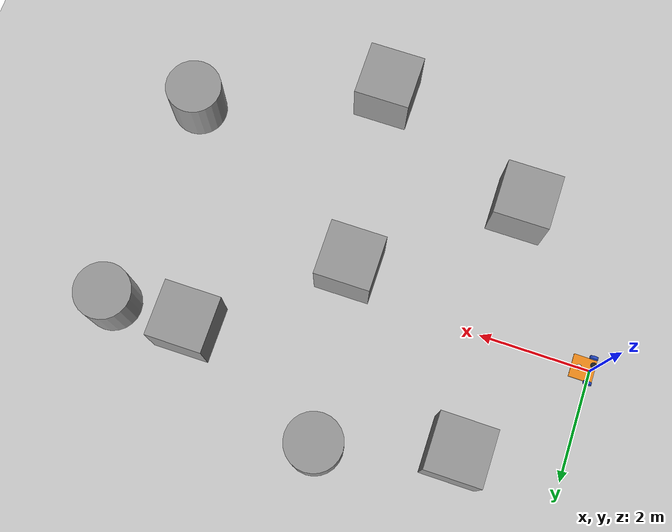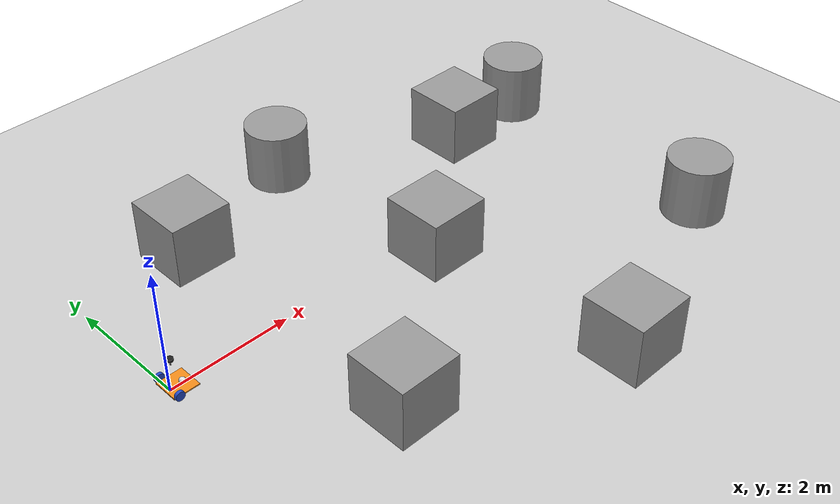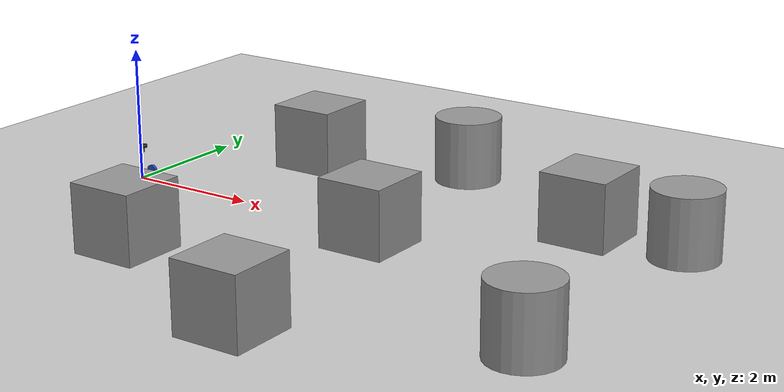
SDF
<sdf version="1.7">
 <world name="default">
  <light name="sun" type="directional">
   <pose>0 0 10 0 -0 0</pose>
   <diffuse>0.8 0.8 0.8 1</diffuse>
   <specular>0.2 0.2 0.2 1</specular>
   <attenuation>
    <range>1000</range>
    <constant>0.9</constant>
    <linear>0.01</linear>
    <quadratic>0.001</quadratic>
   </attenuation>
   <direction>-0.5 0.1 -0.9</direction>
   <spot><inner_angle>0</inner_angle><outer_angle>0</outer_angle><falloff>0</falloff></spot>
  </light>
  <model name="ground_plane">
   <static>1</static>
   <link name="link">
    <collision name="collision">
     <geometry><plane><normal>0 0 1</normal><size>100 100</size></plane></geometry>
     <surface>
      <contact><collide_bitmask>65535</collide_bitmask></contact>
      <friction><ode><mu>100</mu><mu2>50</mu2></ode></friction>
     </surface>
    </collision>
    <visual name="visual">
     <cast_shadows>0</cast_shadows>
     <geometry><plane><normal>0 0 1</normal><size>100 100</size></plane></geometry>
     <material>
      <script><uri>file://media/materials/scripts/gazebo.material</uri><name>Gazebo/Grey</name></script>
     </material>
    </visual>
   </link>
  </model>
  <gravity>0 0 -9.8</gravity>
  <magnetic_field>6e-06 2.3e-05 -4.2e-05</magnetic_field>
  <atmosphere type="adiabatic"/>
  <physics type="ode">
   <max_step_size>0.001</max_step_size>
   <real_time_factor>1</real_time_factor>
   <real_time_update_rate>1000</real_time_update_rate>
  </physics>
  <scene><ambient>0.4 0.4 0.4 1</ambient><background>0.7 0.7 0.7 1</background><shadows>1</shadows></scene>
  <audio><device>default</device></audio>
  <spherical_coordinates>
   <surface_model>EARTH_WGS84</surface_model>
   <latitude_deg>0</latitude_deg>
   <longitude_deg>0</longitude_deg>
   <elevation>0</elevation>
   <heading_deg>0</heading_deg>
  </spherical_coordinates>
  <model name="my_bot">
   <link name="base_link">
    <inertial>
     <pose>0.1335 0 0.032143 0 -0 0</pose>
     <mass>0.7</mass>
     <inertia>
      <ixx>0.0277578</ixx>
      <ixy>0</ixy>
      <ixz>0.00315125</ixz>
      <iyy>0.0287118</iyy>
      <iyz>0</iyz>
      <izz>0.015531</izz>
     </inertia>
    </inertial>
    <collision name="base_link_fixed_joint_lump__chassis_collision">
     <pose>0.1325 0 -0.04 0 -0 0</pose>
     <geometry><box><size>0.415 0.415 0.02</size></box></geometry>
    </collision>
    <collision name="base_link_fixed_joint_lump__caster_wheel_collision_1">
     <pose>0.205 0 -0.025 0 -0 0</pose>
     <geometry><sphere><radius>0.05</radius></sphere></geometry>
     <surface><friction><ode><mu>0.001</mu><mu2>0.001</mu2></ode></friction></surface>
    </collision>
    <collision name="base_link_fixed_joint_lump__laser_frame_collision_2">
     <pose>0.067 0 0.45 0 -0 0</pose>
     <geometry><cylinder><length>0.04</length><radius>0.05</radius></cylinder></geometry>
    </collision>
    <visual name="base_link_fixed_joint_lump__chassis_visual">
     <pose>0.1325 0 -0.04 0 -0 0</pose>
     <geometry><box><size>0.415 0.415 0.02</size></box></geometry>
     <material>
      <script><name>Gazebo/Orange</name><uri>file://media/materials/scripts/gazebo.material</uri></script>
     </material>
    </visual>
    <visual name="base_link_fixed_joint_lump__caster_wheel_visual_1">
     <pose>0.205 0 -0.025 0 -0 0</pose>
     <geometry><sphere><radius>0.05</radius></sphere></geometry>
     <material>
      <script><name>Gazebo/White</name><uri>file://media/materials/scripts/gazebo.material</uri></script>
     </material>
    </visual>
    <visual name="base_link_fixed_joint_lump__laser_frame_visual_2">
     <pose>0.067 0 0.45 0 -0 0</pose>
     <geometry><cylinder><length>0.04</length><radius>0.05</radius></cylinder></geometry>
     <material>
      <script><name>Gazebo/Black</name><uri>file://media/materials/scripts/gazebo.material</uri></script>
     </material>
    </visual>
    <visual name="base_link_fixed_joint_lump__laser_frame_visual_3">
     <pose>0.067 0 0.4 0 -0 0</pose>
     <geometry><cylinder><length>0.1</length><radius>0.01</radius></cylinder></geometry>
     <material>
      <script><name>Gazebo/Black</name><uri>file://media/materials/scripts/gazebo.material</uri></script>
     </material>
    </visual>
    <sensor name="laser" type="ray">
     <visualize>0</visualize>
     <update_rate>10</update_rate>
     <ray>
      <scan>
       <horizontal>
        <samples>360</samples>
        <min_angle>-3.14</min_angle>
        <max_angle>3.14</max_angle>
        <resolution>1</resolution>
       </horizontal>
       <vertical><samples>1</samples><min_angle>0</min_angle><max_angle>0</max_angle></vertical>
      </scan>
      <range><min>0.3</min><max>12</max></range>
     </ray>
     <plugin name="laser_controller" filename="libgazebo_ros_ray_sensor.so">
      <ros><argument>~/out:=scan</argument></ros>
      <output_type>sensor_msgs/LaserScan</output_type>
      <frame_name>laser_frame</frame_name>
     </plugin>
     <pose>0.067 0 0.45 0 -0 0</pose>
    </sensor>
   </link>
   <joint name="left_wheel_joint" type="revolute">
    <pose relative_to="base_link">0 0.23 0 -1.5708 0 0</pose>
    <parent>base_link</parent>
    <child>left_wheel</child>
    <axis>
     <xyz>0 0 1</xyz>
     <limit><lower>-1e+16</lower><upper>1e+16</upper></limit>
     <dynamics><spring_reference>0</spring_reference><spring_stiffness>0</spring_stiffness></dynamics>
    </axis>
   </joint>
   <link name="left_wheel">
    <pose relative_to="left_wheel_joint">0 0 0 0 -0 0</pose>
    <inertial>
     <mass>0.05</mass>
     <inertia>
      <ixx>8.07292e-05</ixx>
      <ixy>0</ixy>
      <ixz>0</ixz>
      <iyy>8.07292e-05</iyy>
      <iyz>0</iyz>
      <izz>0.000140625</izz>
     </inertia>
    </inertial>
    <collision name="left_wheel_collision">
     <geometry><sphere><radius>0.075</radius></sphere></geometry>
    </collision>
    <visual name="left_wheel_visual">
     <geometry><cylinder><length>0.05</length><radius>0.075</radius></cylinder></geometry>
     <material>
      <script><name>Gazebo/Blue</name><uri>file://media/materials/scripts/gazebo.material</uri></script>
     </material>
    </visual>
   </link>
   <joint name="right_wheel_joint" type="revolute">
    <pose relative_to="base_link">0 -0.23 0 1.5708 -0 0</pose>
    <parent>base_link</parent>
    <child>right_wheel</child>
    <axis>
     <xyz>0 0 -1</xyz>
     <limit><lower>-1e+16</lower><upper>1e+16</upper></limit>
     <dynamics><spring_reference>0</spring_reference><spring_stiffness>0</spring_stiffness></dynamics>
    </axis>
   </joint>
   <link name="right_wheel">
    <pose relative_to="right_wheel_joint">0 0 0 0 -0 0</pose>
    <inertial>
     <mass>0.05</mass>
     <inertia>
      <ixx>8.07292e-05</ixx>
      <ixy>0</ixy>
      <ixz>0</ixz>
      <iyy>8.07292e-05</iyy>
      <iyz>0</iyz>
      <izz>0.000140625</izz>
     </inertia>
    </inertial>
    <collision name="right_wheel_collision">
     <geometry><sphere><radius>0.075</radius></sphere></geometry>
    </collision>
    <visual name="right_wheel_visual">
     <geometry><cylinder><length>0.05</length><radius>0.075</radius></cylinder></geometry>
     <material>
      <script><name>Gazebo/Blue</name><uri>file://media/materials/scripts/gazebo.material</uri></script>
     </material>
    </visual>
   </link>
   <static>0</static>
   <plugin name="gazebo_ros2_control" filename="libgazebo_ros2_control.so">
    <parameters>/home/dev/ws/install/articubot_one/share/articubot_one/config/my_controllers.yaml</parameters>
    <parameters>/home/dev/ws/install/articubot_one/share/articubot_one/config/gaz_ros2_ctl_use_sim.yaml</parameters>
   </plugin>
   <pose>-1e-05 -0.00016 0.074999 6e-06 -7e-06 -0.001204</pose>
  </model>
  <model name="unit_box_2">
   <pose>4.91852 -3.7814 0.499995 0 1e-05 0</pose>
   <link name="link">
    <inertial>
     <mass>1</mass>
     <inertia>
      <ixx>0.166667</ixx>
      <ixy>0</ixy>
      <ixz>0</ixz>
      <iyy>0.166667</iyy>
      <iyz>0</iyz>
      <izz>0.166667</izz>
     </inertia>
    </inertial>
    <collision name="collision"><geometry><box><size>1 1 1</size></box></geometry></collision>
    <visual name="visual">
     <geometry><box><size>1 1 1</size></box></geometry>
     <material>
      <script><name>Gazebo/Grey</name><uri>file://media/materials/scripts/gazebo.material</uri></script>
     </material>
    </visual>
   </link>
  </model>
  <model name="unit_box">
   <pose>1.82984 2.09871 0.499995 -1e-05 0 0</pose>
   <link name="link">
    <inertial>
     <mass>1</mass>
     <inertia>
      <ixx>0.166667</ixx>
      <ixy>0</ixy>
      <ixz>0</ixz>
      <iyy>0.166667</iyy>
      <iyz>0</iyz>
      <izz>0.166667</izz>
     </inertia>
    </inertial>
    <collision name="collision"><geometry><box><size>1 1 1</size></box></geometry></collision>
    <visual name="visual">
     <geometry><box><size>1 1 1</size></box></geometry>
     <material>
      <script><name>Gazebo/Grey</name><uri>file://media/materials/scripts/gazebo.material</uri></script>
     </material>
    </visual>
   </link>
  </model>
  <model name="unit_box_0">
   <pose>1.96724 -2.41603 0.499995 0 1e-05 0</pose>
   <link name="link">
    <inertial>
     <mass>1</mass>
     <inertia>
      <ixx>0.166667</ixx>
      <ixy>0</ixy>
      <ixz>0</ixz>
      <iyy>0.166667</iyy>
      <iyz>0</iyz>
      <izz>0.166667</izz>
     </inertia>
    </inertial>
    <collision name="collision"><geometry><box><size>1 1 1</size></box></geometry></collision>
    <visual name="visual">
     <geometry><box><size>1 1 1</size></box></geometry>
     <material>
      <script><name>Gazebo/Grey</name><uri>file://media/materials/scripts/gazebo.material</uri></script>
     </material>
    </visual>
   </link>
  </model>
  <model name="unit_cylinder_0">
   <pose>8.15514 -2.46645 0.499998 3e-06 -4e-06 0</pose>
   <link name="link">
    <inertial>
     <mass>1</mass>
     <inertia><ixx>0.145833</ixx><ixy>0</ixy><ixz>0</ixz><iyy>0.145833</iyy><iyz>0</iyz><izz>0.125</izz></inertia>
    </inertial>
    <collision name="collision">
     <geometry><cylinder><radius>0.5</radius><length>1</length></cylinder></geometry>
    </collision>
    <visual name="visual">
     <geometry><cylinder><radius>0.5</radius><length>1</length></cylinder></geometry>
     <material>
      <script><name>Gazebo/Grey</name><uri>file://media/materials/scripts/gazebo.material</uri></script>
     </material>
    </visual>
   </link>
  </model>
  <model name="unit_cylinder_1">
   <pose>8.30213 1.49559 0.499998 3e-06 4e-06 -0</pose>
   <link name="link">
    <inertial>
     <mass>1</mass>
     <inertia><ixx>0.145833</ixx><ixy>0</ixy><ixz>0</ixz><iyy>0.145833</iyy><iyz>0</iyz><izz>0.125</izz></inertia>
    </inertial>
    <collision name="collision">
     <geometry><cylinder><radius>0.5</radius><length>1</length></cylinder></geometry>
    </collision>
    <visual name="visual">
     <geometry><cylinder><radius>0.5</radius><length>1</length></cylinder></geometry>
     <material>
      <script><name>Gazebo/Grey</name><uri>file://media/materials/scripts/gazebo.material</uri></script>
     </material>
    </visual>
   </link>
  </model>
  <model name="unit_box_1">
   <pose>6.86306 1.47293 0.499995 0 1e-05 0</pose>
   <link name="link">
    <inertial>
     <mass>1</mass>
     <inertia>
      <ixx>0.166667</ixx>
      <ixy>0</ixy>
      <ixz>0</ixz>
      <iyy>0.166667</iyy>
      <iyz>0</iyz>
      <izz>0.166667</izz>
     </inertia>
    </inertial>
    <collision name="collision"><geometry><box><size>1 1 1</size></box></geometry></collision>
    <visual name="visual">
     <geometry><box><size>1 1 1</size></box></geometry>
     <material>
      <script><name>Gazebo/Grey</name><uri>file://media/materials/scripts/gazebo.material</uri></script>
     </material>
    </visual>
   </link>
  </model>
  <model name="unit_cylinder">
   <pose>4.12602 2.74487 0.499993 -3e-06 -4e-06 -0</pose>
   <link name="link">
    <inertial>
     <mass>1</mass>
     <inertia><ixx>0.145833</ixx><ixy>0</ixy><ixz>0</ixz><iyy>0.145833</iyy><iyz>0</iyz><izz>0.125</izz></inertia>
    </inertial>
    <collision name="collision">
     <geometry><cylinder><radius>0.5</radius><length>1</length></cylinder></geometry>
    </collision>
    <visual name="visual">
     <geometry><cylinder><radius>0.5</radius><length>1</length></cylinder></geometry>
     <material>
      <script><name>Gazebo/Grey</name><uri>file://media/materials/scripts/gazebo.material</uri></script>
     </material>
    </visual>
   </link>
  </model>
  <model name="unit_box_3">
   <pose>4.5439 -0.410849 0.5 0 -0 0</pose>
   <link name="link">
    <inertial>
     <mass>1</mass>
     <inertia>
      <ixx>0.166667</ixx>
      <ixy>0</ixy>
      <ixz>0</ixz>
      <iyy>0.166667</iyy>
      <iyz>0</iyz>
      <izz>0.166667</izz>
     </inertia>
    </inertial>
    <collision name="collision"><geometry><box><size>1 1 1</size></box></geometry></collision>
    <visual name="visual">
     <geometry><box><size>1 1 1</size></box></geometry>
     <material>
      <script><name>Gazebo/Grey</name><uri>file://media/materials/scripts/gazebo.material</uri></script>
     </material>
    </visual>
   </link>
  </model>
 </world>
</sdf>
